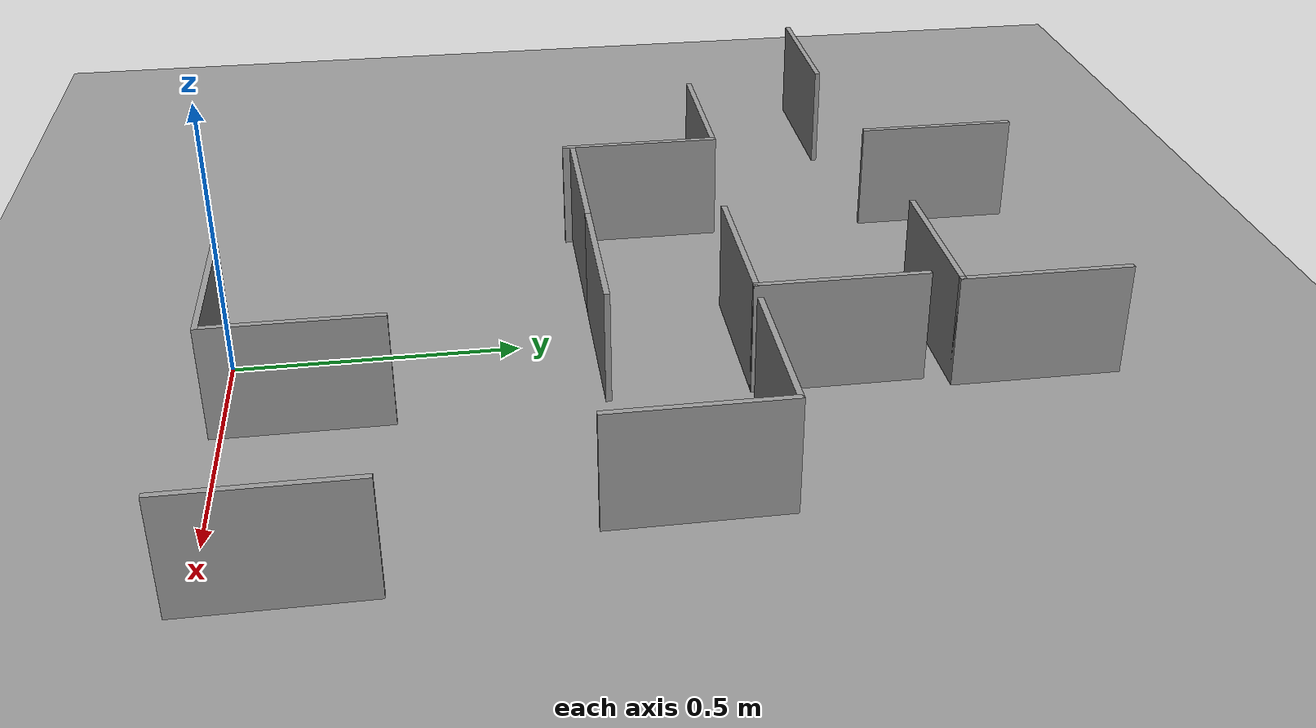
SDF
<sdf version="1.10">
 <world name="default">
  <model name="ground_plane">
   <static>true</static>
   <link name="link">
    <collision name="collision">
     <geometry><plane><normal>0 0 1</normal><size>1 1</size></plane></geometry>
    </collision>
    <visual name="visual">
     <geometry><plane><normal>0 0 1</normal><size>100 100</size></plane></geometry>
     <material>
      <ambient>0.800000012 0.800000012 0.800000012 1</ambient>
      <diffuse>0.800000012 0.800000012 0.800000012 1</diffuse>
      <specular>0.800000012 0.800000012 0.800000012 1</specular>
     </material>
    </visual>
    <inertial>
     <mass>1</mass>
     <inertia><ixx>1</ixx><ixy>0</ixy><ixz>0</ixz><iyy>1</iyy><iyz>0</iyz><izz>1</izz></inertia>
    </inertial>
   </link>
  </model>
  <model name="ground_plane_2">
   <static>1</static>
   <link name="link">
    <collision name="collision">
     <geometry><plane><normal>0 0 1</normal><size>100 100</size></plane></geometry>
     <surface><friction><ode><mu>100</mu><mu2>50</mu2></ode></friction></surface>
    </collision>
    <visual name="visual">
     <cast_shadows>0</cast_shadows>
     <geometry><plane><normal>0 0 1</normal><size>100 100</size></plane></geometry>
     <material>
      <script><uri>file://media/materials/scripts/gazebo.material</uri><name>Gazebo/Grey</name></script>
     </material>
    </visual>
   </link>
  </model>
  <model name="Maze_L_RU">
   <pose>0.142 0.142 0 0 -0 0</pose>
   <link name="Wall_11">
    <collision name="Wall_11_Collision">
     <geometry><box><size>0.294 0.01 0.25</size></box></geometry>
     <pose>0 0 0.125 0 -0 0</pose>
    </collision>
    <visual name="Wall_11_Visual">
     <pose>0 0 0.125 0 -0 0</pose>
     <geometry><box><size>0.294 0.01 0.25</size></box></geometry>
     <material>
      <script><uri>file://media/materials/scripts/gazebo.material</uri><name>Gazebo/Grey</name></script>
      <ambient>1 1 1 1</ambient>
     </material>
     <meta><layer>0</layer></meta>
    </visual>
    <pose>0 -0.142 0 0 -0 0</pose>
   </link>
   <link name="Wall_12">
    <collision name="Wall_12_Collision">
     <geometry><box><size>0.294 0.01 0.25</size></box></geometry>
     <pose>0 0 0.125 0 -0 0</pose>
    </collision>
    <visual name="Wall_12_Visual">
     <pose>0 0 0.125 0 -0 0</pose>
     <geometry><box><size>0.294 0.01 0.25</size></box></geometry>
     <material>
      <script><uri>file://media/materials/scripts/gazebo.material</uri><name>Gazebo/Grey</name></script>
      <ambient>1 1 1 1</ambient>
     </material>
     <meta><layer>0</layer></meta>
    </visual>
    <pose>0.142 0 0 0 -0 1.5708</pose>
   </link>
   <static>1</static>
  </model>
  <model name="Maze_I_H_clone_4">
   <pose>0.708896 0.126989 0 0 -0 0</pose>
   <link name="Wall_0">
    <collision name="Wall_0_Collision">
     <geometry><box><size>0.294 0.01 0.25</size></box></geometry>
     <pose>0 0 0.125 0 -0 0</pose>
    </collision>
    <visual name="Wall_0_Visual">
     <pose>0 0 0.125 0 -0 0</pose>
     <geometry><box><size>0.294 0.01 0.25</size></box></geometry>
     <material>
      <script><uri>file://media/materials/scripts/gazebo.material</uri><name>Gazebo/Grey</name></script>
      <ambient>1 1 1 1</ambient>
     </material>
     <meta><layer>0</layer></meta>
    </visual>
    <pose>0 0 0 0 -0 1.5708</pose>
   </link>
   <static>1</static>
  </model>
  <model name="Maze_L_RU_clone_0">
   <pose>0.158329 1.34443 0 0 -0 0</pose>
   <link name="Wall_11">
    <collision name="Wall_11_Collision">
     <geometry><box><size>0.294 0.01 0.25</size></box></geometry>
     <pose>0 0 0.125 0 -0 0</pose>
    </collision>
    <visual name="Wall_11_Visual">
     <pose>0 0 0.125 0 -0 0</pose>
     <geometry><box><size>0.294 0.01 0.25</size></box></geometry>
     <material>
      <script><uri>file://media/materials/scripts/gazebo.material</uri><name>Gazebo/Grey</name></script>
      <ambient>1 1 1 1</ambient>
     </material>
     <meta><layer>0</layer></meta>
    </visual>
    <pose>0 -0.142 0 0 -0 0</pose>
   </link>
   <link name="Wall_12">
    <collision name="Wall_12_Collision">
     <geometry><box><size>0.294 0.01 0.25</size></box></geometry>
     <pose>0 0 0.125 0 -0 0</pose>
    </collision>
    <visual name="Wall_12_Visual">
     <pose>0 0 0.125 0 -0 0</pose>
     <geometry><box><size>0.294 0.01 0.25</size></box></geometry>
     <material>
      <script><uri>file://media/materials/scripts/gazebo.material</uri><name>Gazebo/Grey</name></script>
      <ambient>1 1 1 1</ambient>
     </material>
     <meta><layer>0</layer></meta>
    </visual>
    <pose>0.142 0 0 0 -0 1.5708</pose>
   </link>
   <static>1</static>
  </model>
  <model name="Maze_L_RU_clone_1">
   <pose>0.131639 1.01153 0 0 -0 0</pose>
   <link name="Wall_11">
    <collision name="Wall_11_Collision">
     <geometry><box><size>0.294 0.01 0.25</size></box></geometry>
     <pose>0 0 0.125 0 -0 0</pose>
    </collision>
    <visual name="Wall_11_Visual">
     <pose>0 0 0.125 0 -0 0</pose>
     <geometry><box><size>0.294 0.01 0.25</size></box></geometry>
     <material>
      <script><uri>file://media/materials/scripts/gazebo.material</uri><name>Gazebo/Grey</name></script>
      <ambient>1 1 1 1</ambient>
     </material>
     <meta><layer>0</layer></meta>
    </visual>
    <pose>0 -0.142 0 0 -0 0</pose>
   </link>
   <link name="Wall_12">
    <collision name="Wall_12_Collision">
     <geometry><box><size>0.294 0.01 0.25</size></box></geometry>
     <pose>0 0 0.125 0 -0 0</pose>
    </collision>
    <visual name="Wall_12_Visual">
     <pose>0 0 0.125 0 -0 0</pose>
     <geometry><box><size>0.294 0.01 0.25</size></box></geometry>
     <material>
      <script><uri>file://media/materials/scripts/gazebo.material</uri><name>Gazebo/Grey</name></script>
      <ambient>1 1 1 1</ambient>
     </material>
     <meta><layer>0</layer></meta>
    </visual>
    <pose>0.142 0 0 0 -0 1.5708</pose>
   </link>
   <static>1</static>
  </model>
  <model name="Maze_L_LU_clone">
   <pose>0.462988 0.725563 0 0 -0 0</pose>
   <link name="Wall_0">
    <collision name="Wall_0_Collision">
     <geometry><box><size>0.294 0.01 0.25</size></box></geometry>
     <pose>0 0 0.125 0 -0 0</pose>
    </collision>
    <visual name="Wall_0_Visual">
     <pose>0 0 0.125 0 -0 0</pose>
     <geometry><box><size>0.294 0.01 0.25</size></box></geometry>
     <material>
      <script><uri>file://media/materials/scripts/gazebo.material</uri><name>Gazebo/Grey</name></script>
      <ambient>1 1 1 1</ambient>
     </material>
     <meta><layer>0</layer></meta>
    </visual>
    <pose>0 0.142 0 0 -0 3.14159</pose>
   </link>
   <link name="Wall_2">
    <collision name="Wall_2_Collision">
     <geometry><box><size>0.294 0.01 0.25</size></box></geometry>
     <pose>0 0 0.125 0 -0 0</pose>
    </collision>
    <visual name="Wall_2_Visual">
     <pose>0 0 0.125 0 -0 0</pose>
     <geometry><box><size>0.294 0.01 0.25</size></box></geometry>
     <material>
      <script><uri>file://media/materials/scripts/gazebo.material</uri><name>Gazebo/Grey</name></script>
      <ambient>1 1 1 1</ambient>
     </material>
     <meta><layer>0</layer></meta>
    </visual>
    <pose>0.142 0 0 0 0 -1.5708</pose>
   </link>
   <static>1</static>
  </model>
  <model name="Maze_I_H_clone_5">
   <pose>-0.308653 1.3447 0 0 -0 0</pose>
   <link name="Wall_0">
    <collision name="Wall_0_Collision">
     <geometry><box><size>0.294 0.01 0.25</size></box></geometry>
     <pose>0 0 0.125 0 -0 0</pose>
    </collision>
    <visual name="Wall_0_Visual">
     <pose>0 0 0.125 0 -0 0</pose>
     <geometry><box><size>0.294 0.01 0.25</size></box></geometry>
     <material>
      <script><uri>file://media/materials/scripts/gazebo.material</uri><name>Gazebo/Grey</name></script>
      <ambient>1 1 1 1</ambient>
     </material>
     <meta><layer>0</layer></meta>
    </visual>
    <pose>0 0 0 0 -0 1.5708</pose>
   </link>
   <static>1</static>
  </model>
  <model name="Maze_L_LU_clone_1">
   <pose>-0.452385 0.758851 0 0 -0 0</pose>
   <link name="Wall_0">
    <collision name="Wall_0_Collision">
     <geometry><box><size>0.294 0.01 0.25</size></box></geometry>
     <pose>0 0 0.125 0 -0 0</pose>
    </collision>
    <visual name="Wall_0_Visual">
     <pose>0 0 0.125 0 -0 0</pose>
     <geometry><box><size>0.294 0.01 0.25</size></box></geometry>
     <material>
      <script><uri>file://media/materials/scripts/gazebo.material</uri><name>Gazebo/Grey</name></script>
      <ambient>1 1 1 1</ambient>
     </material>
     <meta><layer>0</layer></meta>
    </visual>
    <pose>0 0.142 0 0 -0 3.14159</pose>
   </link>
   <link name="Wall_2">
    <collision name="Wall_2_Collision">
     <geometry><box><size>0.294 0.01 0.25</size></box></geometry>
     <pose>0 0 0.125 0 -0 0</pose>
    </collision>
    <visual name="Wall_2_Visual">
     <pose>0 0 0.125 0 -0 0</pose>
     <geometry><box><size>0.294 0.01 0.25</size></box></geometry>
     <material>
      <script><uri>file://media/materials/scripts/gazebo.material</uri><name>Gazebo/Grey</name></script>
      <ambient>1 1 1 1</ambient>
     </material>
     <meta><layer>0</layer></meta>
    </visual>
    <pose>0.142 0 0 0 0 -1.5708</pose>
   </link>
   <static>1</static>
  </model>
  <model name="Maze_I_V_clone_2">
   <pose>-0.16756 0.630564 0 0 -0 0</pose>
   <link name="Wall_0">
    <collision name="Wall_0_Collision">
     <geometry><box><size>0.294 0.01 0.25</size></box></geometry>
     <pose>0 0 0.125 0 -0 0</pose>
    </collision>
    <visual name="Wall_0_Visual">
     <pose>0 0 0.125 0 -0 0</pose>
     <geometry><box><size>0.294 0.01 0.25</size></box></geometry>
     <material>
      <script><uri>file://media/materials/scripts/gazebo.material</uri><name>Gazebo/Grey</name></script>
      <ambient>1 1 1 1</ambient>
     </material>
     <meta><layer>0</layer></meta>
    </visual>
   </link>
   <static>1</static>
  </model>
  <model name="Maze_I_V_clone_3">
   <pose>0.124272 0.630343 0 0 -0 0</pose>
   <link name="Wall_0">
    <collision name="Wall_0_Collision">
     <geometry><box><size>0.294 0.01 0.25</size></box></geometry>
     <pose>0 0 0.125 0 -0 0</pose>
    </collision>
    <visual name="Wall_0_Visual">
     <pose>0 0 0.125 0 -0 0</pose>
     <geometry><box><size>0.294 0.01 0.25</size></box></geometry>
     <material>
      <script><uri>file://media/materials/scripts/gazebo.material</uri><name>Gazebo/Grey</name></script>
      <ambient>1 1 1 1</ambient>
     </material>
     <meta><layer>0</layer></meta>
    </visual>
   </link>
   <static>1</static>
  </model>
  <model name="Maze_I_V_clone_2_clone">
   <pose>-0.761578 1.17899 0 0 -0 0</pose>
   <link name="Wall_0">
    <collision name="Wall_0_Collision">
     <geometry><box><size>0.294 0.01 0.25</size></box></geometry>
     <pose>0 0 0.125 0 -0 0</pose>
    </collision>
    <visual name="Wall_0_Visual">
     <pose>0 0 0.125 0 -0 0</pose>
     <geometry><box><size>0.294 0.01 0.25</size></box></geometry>
     <material>
      <script><uri>file://media/materials/scripts/gazebo.material</uri><name>Gazebo/Grey</name></script>
      <ambient>1 1 1 1</ambient>
     </material>
     <meta><layer>0</layer></meta>
    </visual>
   </link>
   <static>1</static>
  </model>
 </world>
</sdf>
